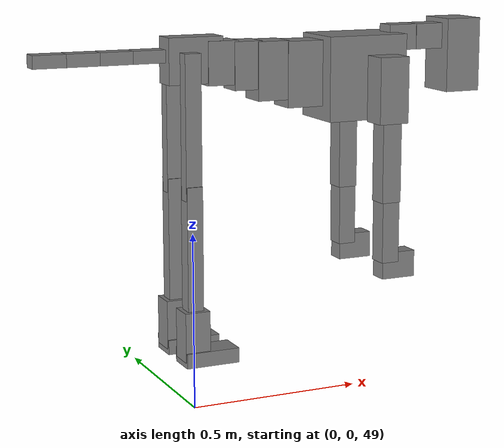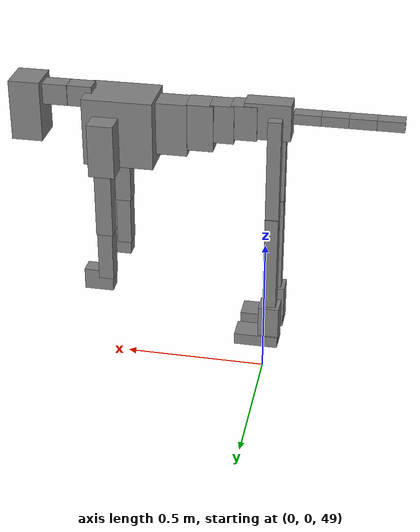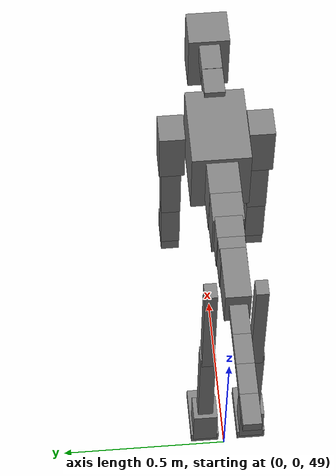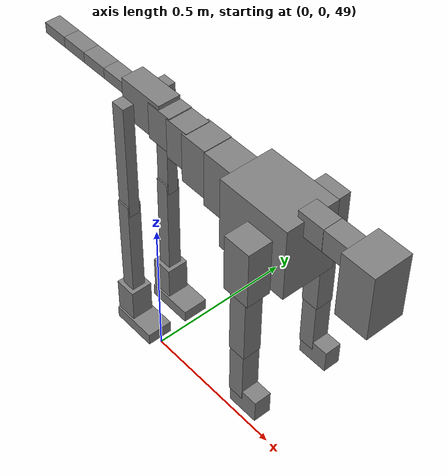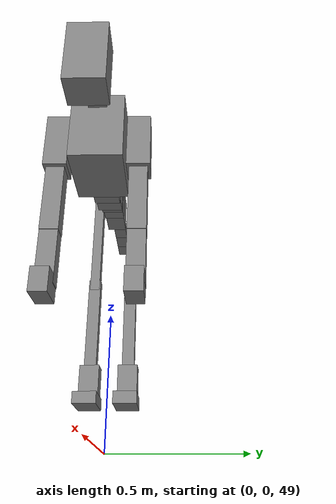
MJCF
<mujoco model="dog">

    <default>
        <joint armature="0.02" stiffness="1" damping="0.2" limited="true"/>
        <geom condim="3" friction="1 0.05 0.05" margin="0.01"/>
        <motor ctrllimited="true" ctrlrange="-1.0 1.0" forcelimited="true" gear="50"/>
    </default>

    <compiler inertiafromgeom="true" angle="radian"/>

    <option timestep="0.016" iterations="50" tolerance="1e-10" solver="Newton" jacobian="dense" cone="pyramidal"/>

    <size nconmax="20000" njmax="60000" nstack="5000000"/>
    <visual>
        <map force="0.1" zfar="30"/>
        <rgba haze="0.15 0.25 0.35 1"/>
        <quality shadowsize="2048"/>
        <global offwidth="800" offheight="800"/>
    </visual>

    <asset>
        <texture type="skybox" builtin="gradient" rgb1="0.3 0.5 0.7" rgb2="0 0 0" width="512" height="512"/>
        <texture name="texplane" type="2d" builtin="checker" rgb1=".2 .3 .4" rgb2=".1 0.15 0.2" width="512" height="512"
                 mark="cross" markrgb=".8 .8 .8"/>
        <texture name="texgeom" type="cube" builtin="flat" mark="cross" width="127" height="1278" rgb1="0.8 0.6 0.4"
                 rgb2="0.8 0.6 0.4" markrgb="1 1 1" random="0.01"/>

        <material name="matplane" reflectance="0.3" texture="texplane" texrepeat="1 1" texuniform="true"/>
        <material name="matgeom" texture="texgeom" texuniform="true" rgba="0.8 0.6 .4 1"/>
    </asset>

    <worldbody>
        <geom name="floor" pos="0 0 0" size="0 0 .25" type="plane" material="matplane" condim="3"/>

        <light directional="false" diffuse=".2 .2 .2" specular="0 0 0" pos="0 0 5" dir="0 0 -1" castshadow="false"/>
        <light mode="targetbodycom" target="torso" directional="false" diffuse=".8 .8 .8" specular="0.3 0.3 0.3"
               pos="0 0 4.0" dir="0 0 -1"/>

        <body name="root" pos="0 0 50">
            <freejoint name="root_1"/>
            <geom type="box" pos="0 0 -0.02" size="0.0774  0.0358  0.063" density="2030"/>

            <body name="spine1" pos="0.054 0 0">
                <joint name="spine1_y" axis="0 1 0" range="0 0.7" limited="true"/>
                <geom type="box" pos="0.02375 0 -0.03" size="0.04375  0.0375  0.05985" density="2030"/>

                <body name="spine2" pos="0.0612 0 0">
                    <joint name="spine2_y" axis="0 1 0" range="-0.15 0.15" limited="true"/>
                    <geom type="box" pos="0.03555  0  -0.04" size="0.04055  0.039  0.06615" density="2030"/>

                    <body name="spine3" pos="0.0730 0 0">
                        <joint name="spine3_y" axis="0 1 0" range="-0.15 0.15" limited="true"/>
                        <geom type="box" pos="0.03555  0  -0.057" size="0.04555  0.0445  0.081" density="2030"/>

                        <body name="spine4" pos="0.0780 0 0">
                            <joint name="spine4_y" axis="0 1 0" range="-0.15 0.15" limited="true"/>
                            <geom type="box" pos="0.05265  0  -0.07" size="0.05265  0.045  0.09135" density="2030"/>

                            <body name="torso" pos="0.1082 0 0">
                                <joint name="torso_y" axis="0 1 0" range="-0.15 0.15" limited="true"/>
                                <geom type="box" pos="0.11925  0  -0.085" size="0.11925  0.085  0.11745"
                                      density="2030"/>

                                <body name="neck1" pos="0.2160  0   0.0180">
                                    <joint name="neck1_y" axis="0 1 0" range="-1.2  -1" limited="true"/>
                                    <geom type="box" pos="0.0423  0  0" size="0.0423  0.03  0.036" density="2325"/>

                                    <body name="neck2" pos="0.0853  0  0">
                                        <joint name="neck2_y" axis="0 1 0" range="0.1  0" limited="true"/>
                                        <geom type="box" pos="0.0423  0  0" size="0.0423  0.03  0.036" density="2325"/>

                                        <body name="head" pos="0.0853  0  0">
                                            <joint name="head_y" axis="0 1 0" range="-0.3  -0.2" limited="true"/>
                                            <geom type="box" pos="0.0531  0  -0.055" size="0.0531  0.06  0.1044"
                                                  density="4030"/>

                                        </body>
                                    </body>
                                </body>

                                <body name="front_shoulder" pos="0.156  0   -0.0480">
                                    <joint name="front_shoulder_y" axis="0 1 0" range="-1 1.5" limited="true"/>
                                    <geom type="box" pos="0 0.13 -0.0655" size="0.0439  0.0375  0.0922" density="1158"/>
                                    <geom type="box" pos="0 -0.13 -0.0655" size="0.0439  0.0375  0.0922"
                                          density="1158"/>

                                    <body name="front_elbow" pos="0  0  -0.1310">
                                        <joint name="front_elbow_y" axis="0 1 0" range="-2 0" limited="true"/>
                                        <geom type="box" pos="0 0.13 -0.1243" size="0.0283  0.0290  0.1243"
                                              density="1081"/>
                                        <geom type="box" pos="0 -0.13 -0.1243" size="0.0283  0.0290  0.1243"
                                              density="1081"/>

                                        <body name="front_wrist" pos="0  0  -0.2486">
                                            <joint name="front_wrist_y" axis="0 1 0" range="-0.2 0" limited="true"/>
                                            <geom type="box" pos="0 0.13 -0.0788" size="0.0256  0.0284  0.0919"
                                                  density="1664"/>
                                            <geom type="box" pos="0 -0.13 -0.0788" size="0.0256  0.0284  0.0919"
                                                  density="1664"/>

                                            <body name="front_finger_end" pos="0  0  -0.1576">
                                                <joint name="front_finger_y" axis="0 1 0" range="-0.4 1"
                                                       limited="true"/>
                                                <geom type="box" pos="0.0273  0.13  -0.0225"
                                                      size="0.0500  0.0273  0.0375" density="1515"/>
                                                <geom type="box" pos="0.0273  -0.13  -0.0225"
                                                      size="0.0500  0.0273  0.0375" density="1515"/>

                                            </body>

                                        </body>
                                    </body>
                                </body>

                            </body>
                        </body>
                    </body>
                </body>
            </body>

            <body name="back_hip" pos="-0.03 0 -0.018">
                <joint name="back_hip_y" axis="0 1 0" range="-1.5 0.3" limited="true"/>
                <geom type="box" pos="0 0.07 -0.1738" size="0.0228  0.0179  0.1966" density="1154"/>
                <geom type="box" pos="0 -0.07 -0.1738" size="0.0228  0.0179  0.1966" density="1154"/>

                <body name="back_knee" pos="0  0  -0.3476">
                    <joint name="back_knee_y" axis="0 1 0" range="0 2.8" limited="true"/>
                    <geom type="box" pos="0 0.07 -0.1686" size="0.0225  0.0221  0.1842" density="1227"/>
                    <geom type="box" pos="0 -0.07 -0.1686" size="0.0225  0.0221  0.1842" density="1227"/>

                    <body name="back_ankle" pos="0  0  -0.3372">
                        <joint name="back_ankle_y" axis="0 1 0" range="-2.2 0" limited="true"/>
                        <geom type="box" pos="0 0.07 -0.0577" size="0.0356  0.0356  0.0689" density="1284"/>
                        <geom type="box" pos="0 -0.07 -0.0577" size="0.0356  0.0356  0.0689" density="1284"/>

                        <body name="back_toe_end" pos="0  0  -0.1153">
                            <joint name="back_toe_y" axis="0 1 0" range="-0.4 1" limited="true"/>
                            <geom type="box" pos="0.0415  0.07  -0.0056" size="0.0761  0.0415  0.0206" density="1515"/>
                            <geom type="box" pos="0.0415  -0.07  -0.0056" size="0.0761  0.0415  0.0206" density="1515"/>

                        </body>
                    </body>
                </body>
            </body>

            <body name="tail1" pos="-0.074 0 -0.006">
                <joint name="tail1_y" axis="0 1 0" range="-0.2 0.2" limited="true"/>
                <geom type="box" pos="-0.0536  0  0" size="0.045  0.025  0.0175" density="1587"/>

                <body name="tail2" pos="-0.09 0 0">
                    <joint name="tail2_y" axis="0 1 0" range="-0.2 0.2" limited="true"/>
                    <geom type="box" pos="-0.0536  0  0" size="0.045  0.025  0.0175" density="1587"/>

                    <body name="tail3" pos="-0.09 0 0">
                        <joint name="tail3_y" axis="0 1 0" range="-0.2 0.2" limited="true"/>
                        <geom type="box" pos="-0.0536  0  0" size="0.045  0.025  0.0175" density="1587"/>

                        <body name="tail4" pos="-0.09 0 0">
                            <joint name="tail4_y" axis="0 1 0" range="-0.2 0.2" limited="true"/>
                            <geom type="box" pos="-0.0536  0  0" size="0.045  0.025  0.0175" density="1587"/>

                        </body>
                    </body>
                </body>
            </body>
        </body>
    </worldbody>

    <actuator>
        <motor joint="spine1_y" forcerange="-150 150     "/>
        <motor joint="spine2_y" forcerange="-150 150     "/>
        <motor joint="spine3_y" forcerange="-150 150     "/>
        <motor joint="spine4_y" forcerange="-150 150     "/>
        <motor joint="torso_y" forcerange="-150 150     "/>
        <motor joint="neck1_y" forcerange="-100 100       "/>
        <motor joint="neck2_y" forcerange="-100 100       "/>
        <motor joint="head_y" forcerange="-150 150       "/>
        <motor joint="front_shoulder_y" forcerange="-170.67 179.39"/>
        <motor joint="front_elbow_y" forcerange="-153.92 156.70"/>
        <motor joint="front_wrist_y" forcerange="-104.18 123.35"/>
        <motor joint="front_finger_y" forcerange="-64.99 40.54"/>
        <motor joint="back_hip_y" forcerange="-221.39 217.13"/>
        <motor joint="back_knee_y" forcerange="-307.86 214.01"/>
        <motor joint="back_angle_y" forcerange="-219.25 249.76"/>
        <motor joint="back_toe_y" forcerange="-134.07 118.09"/>
        <motor joint="tail1_y" forcerange="-50 50     "/>
        <motor joint="tail2_y" forcerange="-50 50     "/>
        <motor joint="tail3_y" forcerange="-50 50     "/>
        <motor joint="tail4_y" forcerange="-50 50     "/>
    </actuator>
</mujoco>
